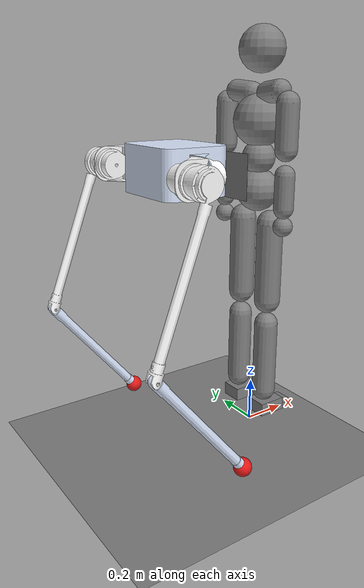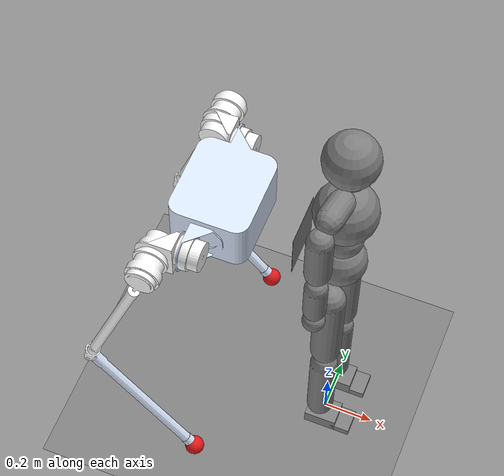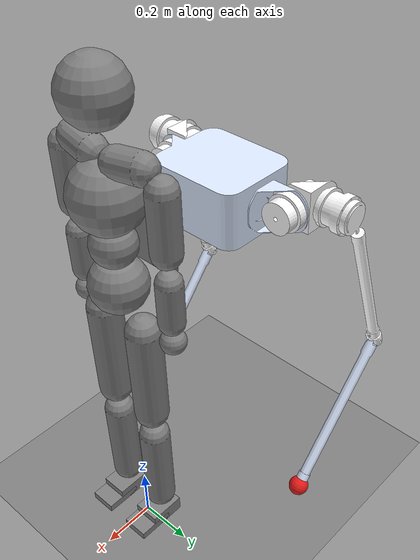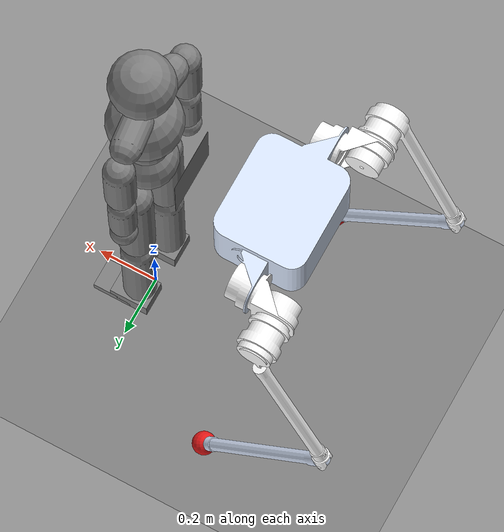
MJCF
<mujoco model="srl_real_hri_HXYK_175">

  <statistic extent="2" center="0.000000 0.000000 1.066667" />

  <option timestep="0.00555" />
  <compiler angle="degree" meshdir="meshes/" />
  <default>
    <motor ctrlrange="-1 1" ctrllimited="true" />
    <default class="body">
      <geom type="capsule" condim="1" friction="1.0 0.05 0.05" solimp=".9 .99 .003" solref=".015 1" />
      <joint type="hinge" damping="0.1" stiffness="5" armature=".007" limited="true" solimplimit="0 .99 .01" />
      <site size="0.042667" group="3" />
      <default class="force-torque">
        <site type="box" size="0.010667 0.010667 0.021333" rgba="1 0 0 1" />
      </default>
      <default class="touch">
        <site type="capsule" rgba="0 0 1 .3" />
      </default>
      <default class="visual">
        <geom type="mesh" contype="0" conaffinity="0" group="2" material="blue_mat"/>
      </default>
      <default class="collision">
        <geom contype="1" conaffinity="1" group="3" material="collision_mat"/>
      </default>
    </default>
  </default>

  <asset>
    <mesh name="base_link" file="base_link.STL"/>
    <mesh name="left_hip_x_link" file="left_hip_x_link.STL"/>
    <mesh name="left_hip_y_link" file="left_hip_y_link.STL"/>
    <mesh name="left_knee_link" file="left_knee_link.STL"/>
    <mesh name="right_hip_x_link" file="right_hip_x_link.STL"/>
    <mesh name="right_hip_y_link" file="right_hip_y_link.STL"/>
    <mesh name="right_knee_link" file="right_knee_link.STL"/>

    <material name="blue_mat" rgba="0.86 0.91 1 1"/>
    <material name="white_mat" rgba="1 1 1 1"/>
    <material name="collision_mat" rgba="0.8 0.5 0.3 0.5"/>
  </asset>

  <worldbody>
    <geom name="floor" type="plane" conaffinity="1" size="106.666667 106.666667 0.213333" />
    <body name="pelvis" pos="0.000000 0.000000 1.066667" childclass="body">
      <freejoint name="root" />

      <site name="root" class="force-torque" />
      <geom name="pelvis" type="sphere" pos="0.000000 0.000000 0.074667" size="0.096000" density="2226" />
      <geom name="upper_waist" type="sphere" pos="0.000000 0.000000 0.218667" size="0.074667" density="2226" />
      <site name="pelvis" class="touch" type="sphere" pos="0.000000 0.000000 0.074667" size="0.097067" />
      <site name="upper_waist" class="touch" type="sphere" pos="0.000000 0.000000 0.218667" size="0.075733" />

      <body name="torso" pos="0.000000 0.000000 0.251894">
        <light name="top" pos="0.000000 0.000000 2.133333" mode="trackcom" />
        <camera name="back" pos="-3.200000 0.000000 1.066667" xyaxes="0 -1 0 1 0 2" mode="trackcom" />
        <camera name="side" pos="0.000000 -3.200000 1.066667" xyaxes="1 0 0 0 1 2" mode="trackcom" />
        <joint name="abdomen_x" pos="0.000000 0.000000 0.000000" axis="1 0 0" range="-60 60" stiffness="600" damping="60" armature=".025" />
        <joint name="abdomen_y" pos="0.000000 0.000000 0.000000" axis="0 1 0" range="-60 90" stiffness="600" damping="60" armature=".025" />
        <joint name="abdomen_z" pos="0.000000 0.000000 0.000000" axis="0 0 1" range="-50 50" stiffness="600" damping="60" armature=".025" />
        <geom name="torso" type="sphere" pos="0.000000 0.000000 0.128000" size="0.117333" density="1794" />
        <site name="torso" class="touch" type="sphere" pos="0.000000 0.000000 0.128000" size="0.118400" />

        <geom name="right_clavicle" fromto="-0.006413 -0.048829 0.244049 -0.017957 -0.136722 0.253459" size="0.048000" density="1100" />
        <geom name="left_clavicle" fromto="-0.006413 0.048829 0.244049 -0.017957 0.136722 0.253459" size="0.048000" density="1100" />

        <body name="head" pos="0.000000 0.000000 0.238820">
          <joint name="neck_x" axis="1 0 0" range="-50 50" stiffness="50" damping="5" armature=".017" />
          <joint name="neck_y" axis="0 1 0" range="-40 60" stiffness="50" damping="5" armature=".017" />
          <joint name="neck_z" axis="0 0 1" range="-45 45" stiffness="50" damping="5" armature=".017" />
          <geom name="head" type="sphere" pos="0.000000 0.000000 0.186667" size="0.101333" density="1081" />
          <site name="head" class="touch" pos="0.000000 0.000000 0.186667" type="sphere" size="0.109867" />
          <camera name="egocentric" pos="0.109867 0.000000 0.186667" xyaxes="0 -1 0 .1 0 1" fovy="80" />
        </body>

        <body name="right_upper_arm" pos="-0.025653 -0.195317 0.259733">
          <joint name="right_shoulder_x" axis="1 0 0" range="-180 45" stiffness="200" damping="20" armature=".02" />
          <joint name="right_shoulder_y" axis="0 1 0" range="-180 60" stiffness="200" damping="20" armature=".02" />
          <joint name="right_shoulder_z" axis="0 0 1" range="-90 90" stiffness="200" damping="20" armature=".02" />
          <geom name="right_upper_arm" fromto="0.000000 0.000000 -0.053333 0.000000 0.000000 -0.245333" size="0.048000" density="982" />
          <site name="right_upper_arm" class="touch" pos="0.000000 0.000000 -0.149333" size="0.049067 0.106667" zaxis="0 0 1" />

          <body name="right_lower_arm" pos="0.000000 0.000000 -0.293107">
            <joint name="right_elbow" axis="0 1 0" range="-160 0" stiffness="150" damping="15" armature=".015" />
            <geom name="right_lower_arm" fromto="0.000000 0.000000 -0.056000 0.000000 0.000000 -0.200000" size="0.042667" density="1056" />
            <site name="right_lower_arm" class="touch" pos="0.000000 0.000000 -0.128000" size="0.043733 0.073067" zaxis="0 1 0" />

            <body name="right_hand" pos="0.000000 0.000000 -0.276210">
              <geom name="right_hand" type="sphere" size="0.042667" density="1865" />
              <site name="right_hand" class="touch" type="sphere" size="0.043733" />
            </body>
          </body>
        </body>

        <body name="left_upper_arm" pos="-0.025653 0.195317 0.259733">
          <joint name="left_shoulder_x" axis="1 0 0" range="-45 180" stiffness="200" damping="20" armature=".02" />
          <joint name="left_shoulder_y" axis="0 1 0" range="-180 60" stiffness="200" damping="20" armature=".02" />
          <joint name="left_shoulder_z" axis="0 0 1" range="-90 90" stiffness="200" damping="20" armature=".02" />
          <geom name="left_upper_arm" fromto="0.000000 0.000000 -0.053333 0.000000 0.000000 -0.245333" size="0.048000" density="982" />
          <site name="left_upper_arm" class="touch" pos="0.000000 0.000000 -0.149333" size="0.049067 0.106667" zaxis="0 0 1" />

          <body name="left_lower_arm" pos="0.000000 0.000000 -0.293107">
            <joint name="left_elbow" axis="0 1 0" range="-160 0" stiffness="150" damping="15" armature=".015" />
            <geom name="left_lower_arm" fromto="0.000000 0.000000 -0.056000 0.000000 0.000000 -0.200000" size="0.042667" density="1056" />
            <site name="left_lower_arm" class="touch" pos="0.000000 0.000000 -0.106667" size="0.043733 0.073067" zaxis="0 0 1" />

            <body name="left_hand" pos="0.000000 0.000000 -0.276210">
              <geom name="left_hand" type="sphere" size="0.042667" density="1865" />
              <site name="left_hand" class="touch" type="sphere" size="0.043733" />
            </body>
          </body>
        </body>
      </body>

      <body name="right_thigh" pos="0.000000 -0.090546 0.000000">
        <site name="right_hip" class="force-torque" />
        <joint name="right_hip_x" axis="1 0 0" range="-60 15" stiffness="600" damping="60" armature=".05" />
        <joint name="right_hip_y" axis="0 1 0" range="-140 60" stiffness="600" damping="60" armature=".05" />
        <joint name="right_hip_z" axis="0 0 1" range="-60 35" stiffness="600" damping="60" armature=".05" />
        <geom name="right_thigh" fromto="0.000000 0.000000 -0.064000 0.000000 0.000000 -0.424000" size="0.058667" density="1269" />
        <site name="right_thigh" class="touch" pos="0.000000 0.000000 -0.224000" size="0.059733 0.321067" zaxis="0 0 -1" />

        <body name="right_shin" pos="0.000000 0.000000 -0.489649">
          <site name="right_knee" class="force-torque" pos="0.000000 0.000000 0.000000" />
          <joint name="right_knee" pos="0.000000 0.000000 0.000000" axis="0 1 0" range="0 160" stiffness="600" damping="60" armature=".05" />
          <geom name="right_shin" fromto="0.000000 0.000000 -0.048000 0.000000 0.000000 -0.378667" size="0.053333" density="1014" />
          <site name="right_shin" class="touch" pos="0.000000 0.000000 -0.213333" size="0.054400 0.166400" zaxis="0 0 -1" />

          <body name="right_foot" pos="0.000000 0.000000 -0.437195">
            <site name="right_ankle" class="force-torque" />
            <joint name="right_ankle_x" pos="0.000000 0.000000 0.000000" axis="1 0 0" range="-30 30" stiffness="400" damping="40" armature=".05" />
            <joint name="right_ankle_y" pos="0.000000 0.000000 0.000000" axis="0 1 0" range="-55 55" stiffness="400" damping="40" armature=".05" />
            <joint name="right_ankle_z" pos="0.000000 0.000000 0.000000" axis="0 0 1" range="-40 40" stiffness="400" damping="40" armature=".05" />
            <geom name="right_foot" type="box" pos="0.018000 0.000000 -0.024000" size="0.064400 0.048000 0.029333" density="1141" />
            <geom name="right_toe" type="box" pos="0.078000 0.000000 -0.0384" size="0.064400 0.048000 0.015" density="1141" />
            <site name="right_foot" class="touch" type="box" pos="0.048000 0.000000 -0.024000" size="0.095467 0.058667 0.030400" />
          </body>
        </body>
      </body>

      <body name="left_thigh" pos="0.000000 0.090546 0.000000">
        <site name="left_hip" class="force-torque" />
        <joint name="left_hip_x" axis="1 0 0" range="-15 60" stiffness="600" damping="60" armature=".05" />
        <joint name="left_hip_y" axis="0 1 0" range="-140 60" stiffness="600" damping="60" armature=".05" />
        <joint name="left_hip_z" axis="0 0 1" range="-35 60" stiffness="600" damping="60" armature=".05" />
        <geom name="left_thigh" fromto="0.000000 0.000000 -0.064000 0.000000 0.000000 -0.424000" size="0.058667" density="1269" />
        <site name="left_thigh" class="touch" pos="0.000000 0.000000 -0.224000" size="0.059733 0.321067" zaxis="0 0 -1" />

        <body name="left_shin" pos="0.000000 0.000000 -0.489649">
          <site name="left_knee" class="force-torque" pos="0.000000 0.000000 0.021333" />
          <joint name="left_knee" pos="0.000000 0.000000 0.000000" axis="0 1 0" range="0 160" stiffness="600" damping="60" armature=".05" />
          <geom name="left_shin" fromto="0.000000 0.000000 -0.048000 0.000000 0.000000 -0.378667" size="0.053333" density="1014" />
          <site name="left_shin" class="touch" pos="0.000000 0.000000 -0.213333" size="0.054400 0.166400" zaxis="0 0 -1" />

          <body name="left_foot" pos="0.000000 0.000000 -0.437195">
            <site name="left_ankle" class="force-torque" />
            <joint name="left_ankle_x" pos="0.000000 0.000000 0.000000" axis="1 0 0" range="-30 30" stiffness="400" damping="40" armature=".05" />
            <joint name="left_ankle_y" pos="0.000000 0.000000 0.000000" axis="0 1 0" range="-55 55" stiffness="400" damping="40" armature=".05" />
            <joint name="left_ankle_z" pos="0.000000 0.000000 0.000000" axis="0 0 1" range="-40 40" stiffness="400" damping="40" armature=".05" />
            <geom name="left_foot" type="box" pos="0.018000 0.000000 -0.024000" size="0.064400 0.048000 0.029333" density="1141" />
            <geom name="left_toe" type="box" pos="0.078000 0.000000 -0.0384" size="0.064400 0.048000 0.015" density="1141"/>
            <site name="left_foot" class="touch" type="box" pos="0.048000 0.000000 -0.024000" size="0.095467 0.058667 0.030400" />
          </body>
        </body>
      </body>

      <body name="SRL" pos="-0.15 0 0.15">
        <geom name="board" pos="0 0 0" size="0.0005 0.1 0.1 " type="box" density='100'/>
        <body name="SRL_root" pos="-0.30 0 -0.05" euler="0 0 0">
          <joint armature="0.00" axis="0 0 1" damping="0" name="SRL_freejoint_z" pos="0.60 0 0" range="-20 20" stiffness="0"/>
          <joint armature="0.00" axis="0 1 0" damping="0" name="SRL_freejoint_y" pos="0.60 0 0" range="-20 20" stiffness="0"/>

          <inertial pos="-0.00060591 -1.445E-17 0.1" mass="10.665" fullinertia="0.163 0.109 0.201 0 0 0"/>

          <geom mesh="base_link" class="visual"/>
          <geom type="box" size="0.15 0.05 0.08" pos="0 0 0.1" class="collision"/>

          <!-- ================= LEFT LEG CHAIN ================= -->
          <body name="left_hip_x_link" pos="-0.065 0.2475 0.1" euler="0 0 180">
            <inertial pos="-0.024642 -0.0076065 0" mass="2.832" fullinertia="0.006 0.007 0.007 0.001 0 0"/>

            <!-- Range converted: -0.2 rad -> -11.46 deg, 0.65 rad -> 37.24 deg -->
            <joint name="left_hip_x_jonit" axis="-1 0 0" range="-11.46 37.24" damping="30" stiffness="300" armature="0.1"/>

            <geom mesh="left_hip_x_link" material="white_mat" class="visual"/>
            <geom type="capsule" size="0.05" fromto="-0.05 0 0 0.05 0 0" class="collision"/>

            <!-- Left Hip Y (Pitch - Thigh) -->
            <!-- URDF: 0.0725 -0.075 0 -->
            <body name="left_hip_y_link" pos="0.0725 -0.075 0">
              <inertial pos="0.030377 -0.029787 -0.083461" mass="6.144" fullinertia="0.145 0.144 0.043 0.008 0.043 -0.022"/>

              <!-- Range converted: +/- 1.05 rad -> +/- 60.16 deg -->
              <joint name="left_hip_y_jonit" axis="0 1 0" range="-60.16 60.16" damping="25" stiffness="250" armature="0.1"/>

              <geom mesh="left_hip_y_link" material="white_mat" class="visual"/>
              <!-- 碰撞体：从HipY原点指向Knee连接点 (0.237, -0.104, -0.65) -->
              <geom type="capsule" size="0.06" fromto="0 0 0 0.237 -0.104 -0.65" class="collision"/>

              <!-- Left Knee (Pitch - Shank) -->
              <!-- URDF: 0.23761 -0.1045 -0.65284, RPY 0.698 0 1.57 -->
              <!-- 使用四元数消除旋转歧义: Roll=40deg, Yaw=90deg -->
              <body name="left_knee_link" pos="0.23761 -0.1045 -0.65284" quat="0.66446 0.24184 0.24184 0.66446">
                <inertial pos="-1.16e-7 8.95e-8 -0.312" mass="0.697" fullinertia="0.039 0.039 0.00024 0 0 0"/>

                <!-- Range converted: +/- 1.05 rad -> +/- 60.16 deg -->
                <joint name="left_knee_jonit" axis="1 0 0" range="-60.16 60.16" damping="40" stiffness="350" armature="0.1"/>

                <geom mesh="left_knee_link" class="visual"/>
                <!-- 碰撞体：小腿约长 0.6m -->
                <geom type="capsule" size="0.04" fromto="0 0 0 0 0 -0.6" class="collision"/>

                <!-- 脚底接触球 -->
                <body name="SRL_left_end" pos="0 0 -0.645">
                    <inertial pos="0 0 0" mass="0.06" diaginertia="0.0001 0.0001 0.0001"/>
                    <geom name="SRL_left_end_contact" type="sphere" size="0.038"
                          friction="0.9 0.01 0.005"
                          contype="1" conaffinity="1"
                          rgba="0.9 0.1 0.1 1"/>
                    <site name="SRL_left_end_touch" size="0.05" rgba="0 1 0 0.2"/>
                </body>

              </body>
            </body>
          </body>

          <!-- ================= RIGHT LEG CHAIN ================= -->
          <body name="right_hip_x_link" pos="-0.065 -0.2475 0.1" euler="0 0 180">
            <inertial pos="-0.024642 0.0076065 0" mass="2.832" fullinertia="0.006 0.007 0.007 -0.001 0 0"/>

            <!-- Range converted: -0.2 rad -> -11.46 deg, 0.65 rad -> 37.24 deg -->
            <joint name="right_hip_x_jonit" axis="1 0 0" range="-11.46 37.24" damping="30" stiffness="300" armature="0.1"/>

            <geom mesh="right_hip_x_link" material="white_mat" class="visual"/>
            <geom type="capsule" size="0.05" fromto="-0.05 0 0 0.05 0 0" class="collision"/>

            <!-- Right Hip Y -->
            <!-- URDF: 0.0725 0.075 0 -->
            <body name="right_hip_y_link" pos="0.0725 0.075 0">
              <inertial pos="0.030377 0.029786 -0.083461" mass="6.144" fullinertia="0.145 0.144 0.043 -0.008 0.043 0.022"/>

              <!-- Range converted: +/- 1.05 rad -> +/- 60.16 deg -->
              <joint name="right_hip_y_jonit" axis="0 1 0" range="-60.16 60.16" damping="25" stiffness="250" armature="0.1"/>

              <geom mesh="right_hip_y_link" material="white_mat" class="visual"/>
              <!-- 碰撞体：指向右腿膝盖位置 (0.237, 0.104, -0.65) -->
              <geom type="capsule" size="0.06" fromto="0 0 0 0.237 0.104 -0.65" class="collision"/>

              <!-- Right Knee -->
              <!-- URDF: 0.23761 0.1045 -0.65284 -->
              <body name="right_knee_link" pos="0.23761 0.1045 -0.65284" quat="0.66446 0.24184 0.24184 0.66446">
                <inertial pos="-1.16e-7 8.92e-8 -0.312" mass="0.697" fullinertia="0.039 0.039 0.00024 0 0 0"/>

                <!-- Range converted: +/- 1.05 rad -> +/- 60.16 deg -->
                <joint name="right_knee_jonit" axis="1 0 0" range="-60.16 60.16" damping="40" stiffness="350" armature="0.1"/>

                <geom mesh="right_knee_link" class="visual"/>
                <geom type="capsule" size="0.04" fromto="0 0 0 0 0 -0.6" class="collision"/>

                <!-- 脚底接触球 -->
                <body name="SRL_right_end" pos="0 0 -0.645">
                    <inertial pos="0 0 0" mass="0.06" diaginertia="0.0001 0.0001 0.0001"/>
                    <geom name="SRL_right_end_contact" type="sphere" size="0.038"
                          friction="0.9 0.01 0.005"
                          contype="1" conaffinity="1"
                          rgba="0.9 0.1 0.1 1"/>
                    <site name="SRL_right_end_touch" size="0.05" rgba="0 1 0 0.2"/>
                </body>

              </body>
            </body>
          </body>

        </body>
      </body>
    </body>
  </worldbody>

  <actuator>
    <motor name="abdomen_x" gear="200" joint="abdomen_x" />
    <motor name="abdomen_y" gear="200" joint="abdomen_y" />
    <motor name="abdomen_z" gear="200" joint="abdomen_z" />
    <motor name="neck_x" gear="20" joint="neck_x" />
    <motor name="neck_y" gear="20" joint="neck_y" />
    <motor name="neck_z" gear="20" joint="neck_z" />
    <motor name="right_shoulder_x" gear="70" joint="right_shoulder_x" />
    <motor name="right_shoulder_y" gear="70" joint="right_shoulder_y" />
    <motor name="right_shoulder_z" gear="70" joint="right_shoulder_z" />
    <motor name="right_elbow" gear="60" joint="right_elbow" />
    <motor name="left_shoulder_x" gear="70" joint="left_shoulder_x" />
    <motor name="left_shoulder_y" gear="70" joint="left_shoulder_y" />
    <motor name="left_shoulder_z" gear="70" joint="left_shoulder_z" />
    <motor name="left_elbow" gear="60" joint="left_elbow" />
    <motor name="right_hip_x" gear="200" joint="right_hip_x" />
    <motor name="right_hip_z" gear="200" joint="right_hip_z" />
    <motor name="right_hip_y" gear="200" joint="right_hip_y" />
    <motor name="right_knee" gear="200" joint="right_knee" />
    <motor name="right_ankle_x" gear="100" joint="right_ankle_x" />
    <motor name="right_ankle_y" gear="100" joint="right_ankle_y" />
    <motor name="right_ankle_z" gear="100" joint="right_ankle_z" />
    <motor name="left_hip_x" gear="200" joint="left_hip_x" />
    <motor name="left_hip_z" gear="200" joint="left_hip_z" />
    <motor name="left_hip_y" gear="200" joint="left_hip_y" />
    <motor name="left_knee" gear="200" joint="left_knee" />
    <motor name="left_ankle_x" gear="100" joint="left_ankle_x" />
    <motor name="left_ankle_y" gear="100" joint="left_ankle_y" />
    <motor name="left_ankle_z" gear="100" joint="left_ankle_z" />
    <motor name="left_hip_x_torque" joint="left_hip_x_jonit" gear="450"  />
    <motor name="left_hip_y_torque" joint="left_hip_y_jonit" gear="450"  />
    <motor name="left_knee_torque" joint="left_knee_jonit" gear="450"  />

    <motor name="right_hip_x_torque" joint="right_hip_x_jonit" gear="450"  />
    <motor name="right_hip_y_torque" joint="right_hip_y_jonit" gear="450"  />
    <motor name="right_knee_torque" joint="right_knee_jonit" gear="450"  />
  </actuator>

  <sensor>
    <subtreelinvel name="pelvis_subtreelinvel" body="pelvis" />
    <accelerometer name="root_accel" site="root" />
    <velocimeter name="root_vel" site="root" />
    <gyro name="root_gyro" site="root" />

    <force name="left_ankle_force" site="left_ankle" />
    <force name="right_ankle_force" site="right_ankle" />
    <force name="left_knee_force" site="left_knee" />
    <force name="right_knee_force" site="right_knee" />
    <force name="left_hip_force" site="left_hip" />
    <force name="right_hip_force" site="right_hip" />

    <torque name="left_ankle_torque" site="left_ankle" />
    <torque name="right_ankle_torque" site="right_ankle" />
    <torque name="left_knee_torque" site="left_knee" />
    <torque name="right_knee_torque" site="right_knee" />
    <torque name="left_hip_torque" site="left_hip" />
    <torque name="right_hip_torque" site="right_hip" />

    <touch name="pelvis_touch" site="pelvis" />
    <touch name="upper_waist_touch" site="upper_waist" />
    <touch name="torso_touch" site="torso" />
    <touch name="head_touch" site="head" />
    <touch name="right_upper_arm_touch" site="right_upper_arm" />
    <touch name="right_lower_arm_touch" site="right_lower_arm" />
    <touch name="right_hand_touch" site="right_hand" />
    <touch name="left_upper_arm_touch" site="left_upper_arm" />
    <touch name="left_lower_arm_touch" site="left_lower_arm" />
    <touch name="left_hand_touch" site="left_hand" />
    <touch name="right_thigh_touch" site="right_thigh" />
    <touch name="right_shin_touch" site="right_shin" />
    <touch name="right_foot_touch" site="right_foot" />
    <touch name="left_thigh_touch" site="left_thigh" />
    <touch name="left_shin_touch" site="left_shin" />
    <touch name="left_foot_touch" site="left_foot" />
  </sensor>

</mujoco>
